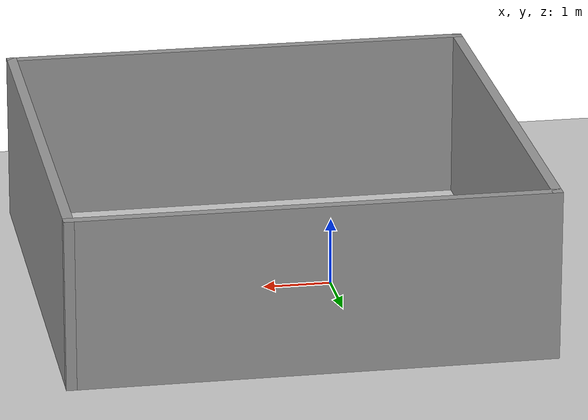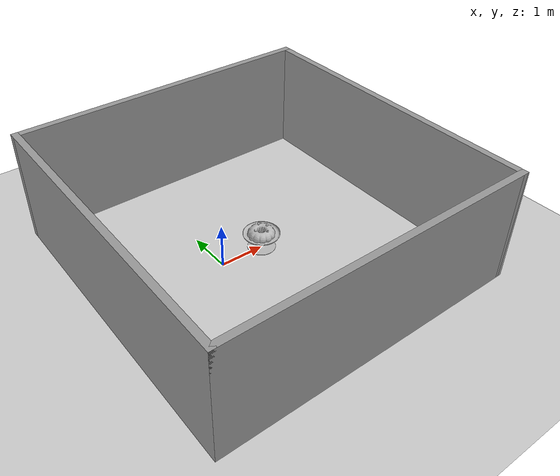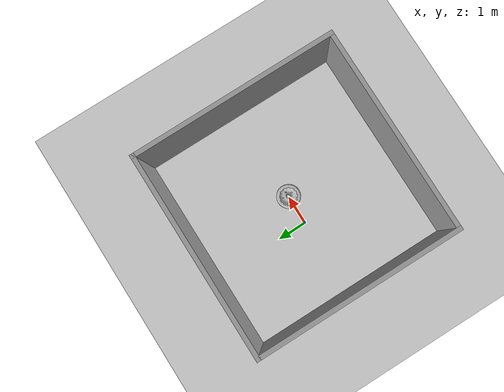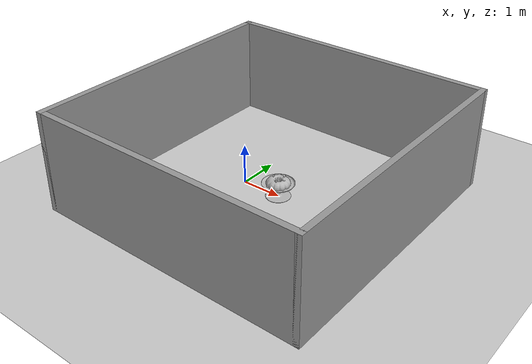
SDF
<sdf version="1.6">
 <world name="default">
  <light name="sun" type="directional">
   <pose>0 0 10 0 -0 0</pose>
   <diffuse>0.8 0.8 0.8 1</diffuse>
   <specular>0.2 0.2 0.2 1</specular>
   <attenuation>
    <range>1000</range>
    <constant>0.9</constant>
    <linear>0.01</linear>
    <quadratic>0.001</quadratic>
   </attenuation>
   <direction>-0.5 0.1 -0.9</direction>
  </light>
  <model name="food">
   <pose>1 0 0 1.56904 -0 0</pose>
   <static>1</static>
   <link name="up">
    <visual name="visual">
     <geometry>
      <mesh><uri>/home/cf/xunfei_ws/src/gazebo_pkg/world/food.dae</uri><scale>2 2 2</scale></mesh>
     </geometry>
    </visual>
   </link>
  </model>
  <model name="ground_plane">
   <static>1</static>
   <link name="link">
    <collision name="collision">
     <geometry><plane><normal>0 0 1</normal><size>100 100</size></plane></geometry>
     <surface><friction><ode><mu>100</mu><mu2>50</mu2></ode></friction></surface>
    </collision>
    <visual name="visual">
     <cast_shadows>0</cast_shadows>
     <geometry><plane><normal>0 0 1</normal><size>100 100</size></plane></geometry>
     <material>
      <script><uri>file://media/materials/scripts/gazebo.material</uri><name>Gazebo/Grey</name></script>
     </material>
    </visual>
   </link>
  </model>
  <gravity>0 0 -9.8</gravity>
  <magnetic_field>6e-06 2.3e-05 -4.2e-05</magnetic_field>
  <atmosphere type="adiabatic"/>
  <physics name="default_physics" default="0" type="ode">
   <max_step_size>0.001</max_step_size>
   <real_time_factor>1</real_time_factor>
   <real_time_update_rate>1000</real_time_update_rate>
  </physics>
  <scene><ambient>0.4 0.4 0.4 1</ambient><background>0.7 0.7 0.7 1</background><shadows>1</shadows></scene>
  <spherical_coordinates>
   <surface_model>EARTH_WGS84</surface_model>
   <latitude_deg>0</latitude_deg>
   <longitude_deg>0</longitude_deg>
   <elevation>0</elevation>
   <heading_deg>0</heading_deg>
  </spherical_coordinates>
  <model name="wall">
   <pose>0.822178 -0.14541 0 0 -0 0</pose>
   <link name="Wall_18">
    <collision name="Wall_18_Collision">
     <geometry><box><size>7 0.15 2.5</size></box></geometry>
     <pose>0 0 1.25 0 -0 0</pose>
    </collision>
    <visual name="Wall_18_Visual">
     <pose>0 0 1.25 0 -0 0</pose>
     <geometry><box><size>7 0.15 2.5</size></box></geometry>
     <material>
      <script><uri>file://media/materials/scripts/gazebo.material</uri><name>Gazebo/Grey</name></script>
      <ambient>1 1 1 1</ambient>
     </material>
     <meta><layer>0</layer></meta>
    </visual>
    <pose>0 -3.425 0 0 -0 0</pose>
   </link>
   <link name="Wall_24">
    <collision name="Wall_24_Collision">
     <geometry><box><size>7 0.15 2.5</size></box></geometry>
     <pose>0 0 1.25 0 -0 0</pose>
    </collision>
    <visual name="Wall_24_Visual">
     <pose>0 0 1.25 0 -0 0</pose>
     <geometry><box><size>7 0.15 2.5</size></box></geometry>
     <material>
      <script><uri>file://media/materials/scripts/gazebo.material</uri><name>Gazebo/Grey</name></script>
      <ambient>1 1 1 1</ambient>
     </material>
     <meta><layer>0</layer></meta>
    </visual>
    <pose>3.425 0 0 0 -0 1.5708</pose>
   </link>
   <link name="Wall_25">
    <collision name="Wall_25_Collision">
     <geometry><box><size>7 0.15 2.5</size></box></geometry>
     <pose>0 0 1.25 0 -0 0</pose>
    </collision>
    <visual name="Wall_25_Visual">
     <pose>0 0 1.25 0 -0 0</pose>
     <geometry><box><size>7 0.15 2.5</size></box></geometry>
     <material>
      <script><uri>file://media/materials/scripts/gazebo.material</uri><name>Gazebo/Grey</name></script>
      <ambient>1 1 1 1</ambient>
     </material>
     <meta><layer>0</layer></meta>
    </visual>
    <pose>0 3.425 0 0 -0 3.14159</pose>
   </link>
   <link name="Wall_26">
    <collision name="Wall_26_Collision">
     <geometry><box><size>7 0.15 2.5</size></box></geometry>
     <pose>0 0 1.25 0 -0 0</pose>
    </collision>
    <visual name="Wall_26_Visual">
     <pose>0 0 1.25 0 -0 0</pose>
     <geometry><box><size>7 0.15 2.5</size></box></geometry>
     <material>
      <script><uri>file://media/materials/scripts/gazebo.material</uri><name>Gazebo/Grey</name></script>
      <ambient>1 1 1 1</ambient>
     </material>
     <meta><layer>0</layer></meta>
    </visual>
    <pose>-3.425 0 0 0 -0 -1.5708</pose>
   </link>
   <static>1</static>
  </model>
 </world>
</sdf>
